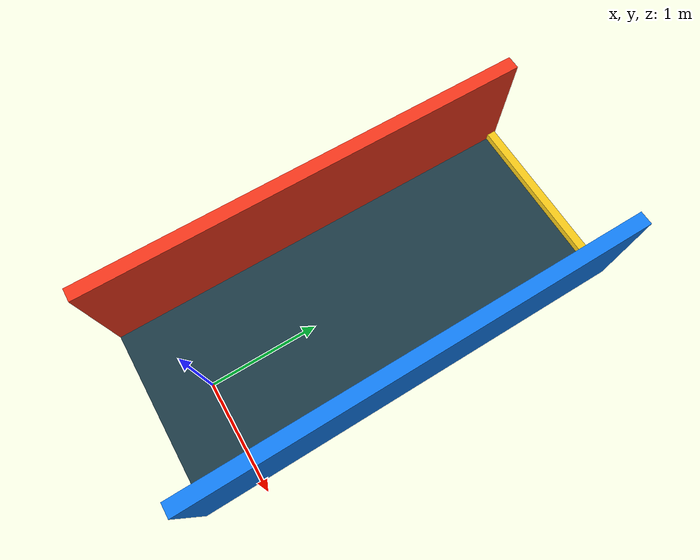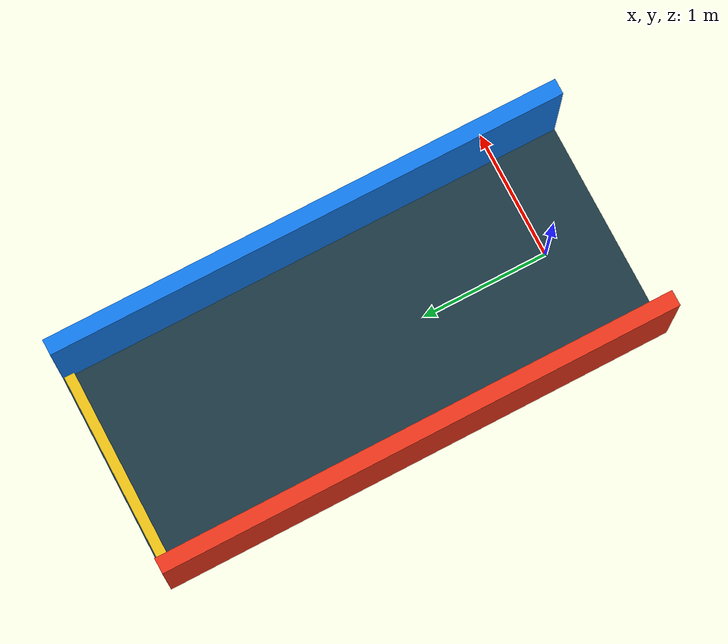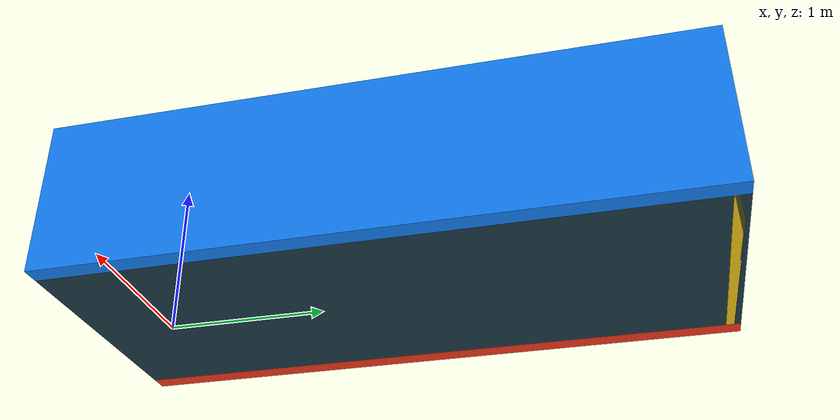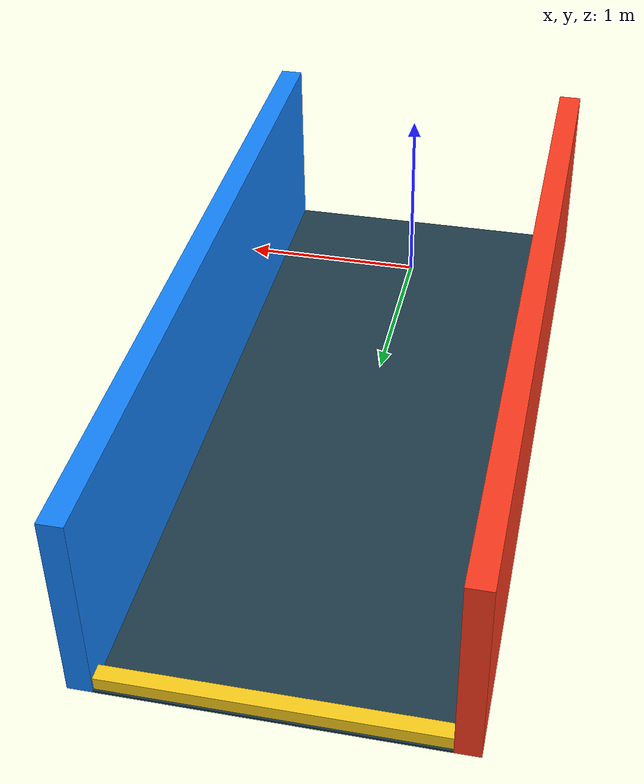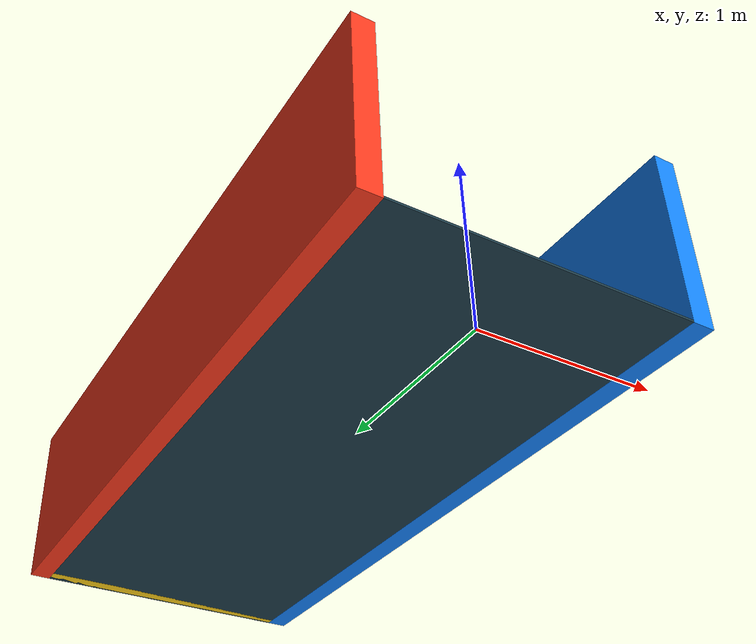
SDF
<?xml version="1.0"?>
<sdf version="1.9">
  <model name="tinympc_corridor">
    <static>true</static>

    <link name="floor_lane">
      <pose>0 1.5 0.006 0 0 0</pose>
      <visual name="visual">
        <geometry>
          <box><size>1.58 4.0 0.012</size></box>
        </geometry>
        <material>
          <ambient>0.10 0.18 0.22 1</ambient>
          <diffuse>0.12 0.24 0.29 1</diffuse>
          <specular>0.05 0.08 0.10 1</specular>
        </material>
      </visual>
    </link>

    <link name="left_wall">
      <pose>0.85 1.5 0.50 0 0 0</pose>
      <collision name="collision">
        <geometry>
          <box><size>0.12 4.0 1.0</size></box>
        </geometry>
      </collision>
      <visual name="visual">
        <geometry>
          <box><size>0.12 4.0 1.0</size></box>
        </geometry>
        <material>
          <ambient>0.05 0.42 0.95 1</ambient>
          <diffuse>0.08 0.52 1.00 1</diffuse>
          <specular>0.30 0.30 0.30 1</specular>
        </material>
      </visual>
    </link>

    <link name="right_wall">
      <pose>-0.85 1.5 0.50 0 0 0</pose>
      <collision name="collision">
        <geometry>
          <box><size>0.12 4.0 1.0</size></box>
        </geometry>
      </collision>
      <visual name="visual">
        <geometry>
          <box><size>0.12 4.0 1.0</size></box>
        </geometry>
        <material>
          <ambient>0.95 0.16 0.10 1</ambient>
          <diffuse>1.00 0.23 0.12 1</diffuse>
          <specular>0.30 0.30 0.30 1</specular>
        </material>
      </visual>
    </link>

    <link name="finish_marker">
      <pose>0 3.45 0.04 0 0 0</pose>
      <visual name="visual">
        <geometry>
          <box><size>1.58 0.08 0.08</size></box>
        </geometry>
        <material>
          <ambient>1.0 0.75 0.05 1</ambient>
          <diffuse>1.0 0.82 0.10 1</diffuse>
          <specular>0.25 0.25 0.25 1</specular>
        </material>
      </visual>
    </link>
  </model>
</sdf>
